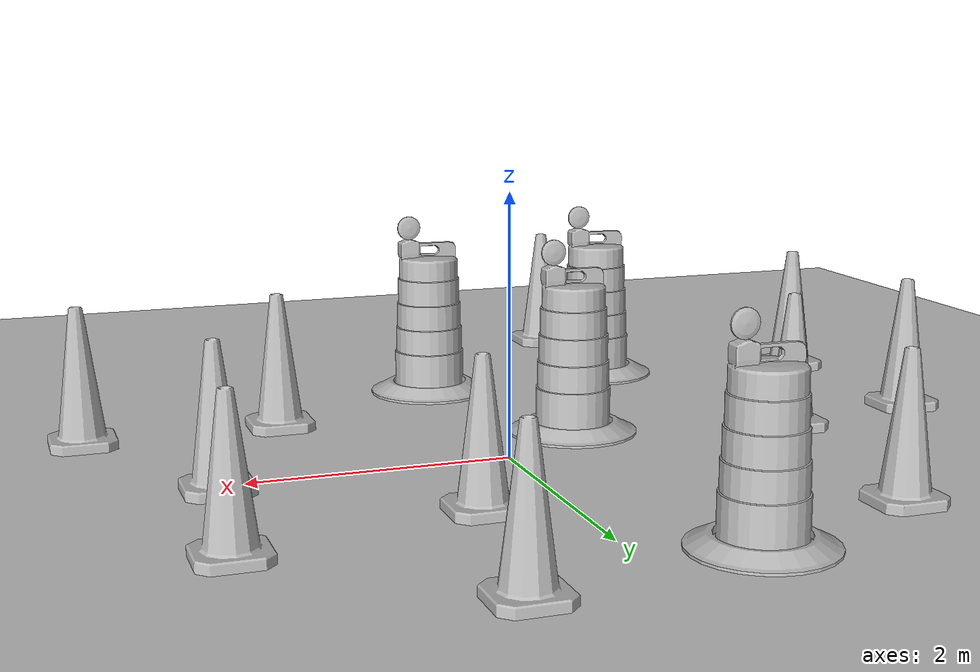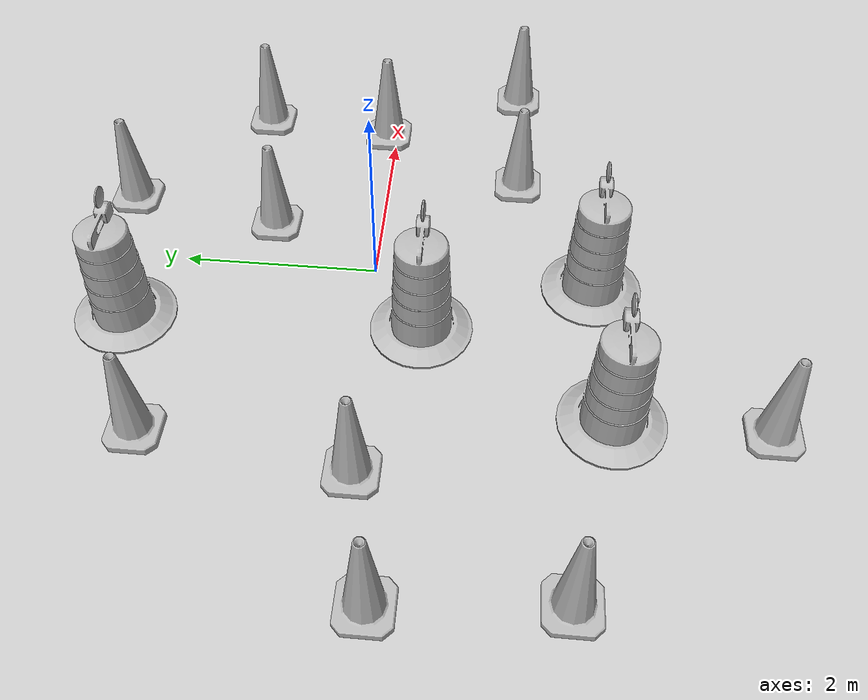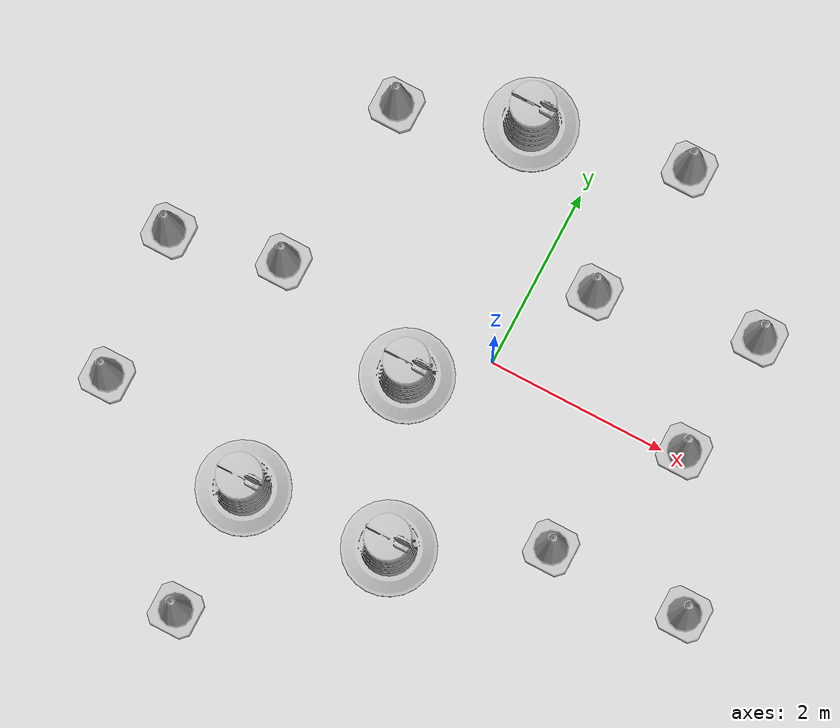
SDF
<sdf version="1.7">
 <world name="default">
  <light name="sun" type="directional">
   <pose>0 0 10 0 -0 0</pose>
   <diffuse>0.8 0.8 0.8 1</diffuse>
   <specular>0.2 0.2 0.2 1</specular>
   <attenuation>
    <range>1000</range>
    <constant>0.9</constant>
    <linear>0.01</linear>
    <quadratic>0.001</quadratic>
   </attenuation>
   <direction>-0.5 0.1 -0.9</direction>
   <spot><inner_angle>0</inner_angle><outer_angle>0</outer_angle><falloff>0</falloff></spot>
  </light>
  <model name="ground_plane">
   <static>1</static>
   <link name="link">
    <collision name="collision">
     <geometry><plane><normal>0 0 1</normal><size>100 100</size></plane></geometry>
     <surface>
      <contact><collide_bitmask>65535</collide_bitmask></contact>
      <friction><ode><mu>100</mu><mu2>50</mu2></ode></friction>
     </surface>
    </collision>
    <visual name="visual">
     <cast_shadows>0</cast_shadows>
     <geometry><plane><normal>0 0 1</normal><size>100 100</size></plane></geometry>
     <material>
      <script><uri>file://media/materials/scripts/gazebo.material</uri><name>Gazebo/Grey</name></script>
     </material>
    </visual>
   </link>
  </model>
  <gravity>0 0 -9.8</gravity>
  <magnetic_field>6e-06 2.3e-05 -4.2e-05</magnetic_field>
  <atmosphere type="adiabatic"/>
  <physics type="ode">
   <max_step_size>0.001</max_step_size>
   <real_time_factor>1</real_time_factor>
   <real_time_update_rate>1000</real_time_update_rate>
  </physics>
  <scene><ambient>0.4 0.4 0.4 1</ambient><background>0.7 0.7 0.7 1</background><shadows>1</shadows></scene>
  <audio><device>default</device></audio>
  <spherical_coordinates>
   <surface_model>EARTH_WGS84</surface_model>
   <latitude_deg>0</latitude_deg>
   <longitude_deg>0</longitude_deg>
   <elevation>0</elevation>
   <heading_deg>0</heading_deg>
  </spherical_coordinates>
  <model name="Construction Cone">
   <link name="link">
    <collision name="collision">
     <geometry>
      <mesh><scale>10 10 10</scale><uri>model://construction_cone/meshes/construction_cone.dae</uri></mesh>
     </geometry>
    </collision>
    <visual name="visual">
     <geometry>
      <mesh><scale>10 10 10</scale><uri>model://construction_cone/meshes/construction_cone.dae</uri></mesh>
     </geometry>
    </visual>
    <inertial>
     <inertia><ixx>1</ixx><ixy>0</ixy><ixz>0</ixz><iyy>1</iyy><iyz>0</iyz><izz>1</izz></inertia>
     <mass>1</mass>
    </inertial>
   </link>
   <pose>2.99155 -1.41624 -0 0 -0 0</pose>
  </model>
  <model name="Construction Cone_0">
   <link name="link">
    <collision name="collision">
     <geometry>
      <mesh><scale>10 10 10</scale><uri>model://construction_cone/meshes/construction_cone.dae</uri></mesh>
     </geometry>
    </collision>
    <visual name="visual">
     <geometry>
      <mesh><scale>10 10 10</scale><uri>model://construction_cone/meshes/construction_cone.dae</uri></mesh>
     </geometry>
    </visual>
    <inertial>
     <inertia><ixx>1</ixx><ixy>0</ixy><ixz>0</ixz><iyy>1</iyy><iyz>0</iyz><izz>1</izz></inertia>
     <mass>1</mass>
    </inertial>
   </link>
   <pose>2.20627 0.100953 -0 0 -0 0</pose>
  </model>
  <model name="Construction Cone_0_clone">
   <link name="link">
    <collision name="collision">
     <geometry>
      <mesh><scale>10 10 10</scale><uri>model://construction_cone/meshes/construction_cone.dae</uri></mesh>
     </geometry>
    </collision>
    <visual name="visual">
     <geometry>
      <mesh><scale>10 10 10</scale><uri>model://construction_cone/meshes/construction_cone.dae</uri></mesh>
     </geometry>
    </visual>
    <inertial>
     <inertia><ixx>1</ixx><ixy>0</ixy><ixz>0</ixz><iyy>1</iyy><iyz>0</iyz><izz>1</izz></inertia>
     <mass>1</mass>
    </inertial>
   </link>
   <pose>1.44582 -1.44647 -1e-05 0 -0 0</pose>
  </model>
  <model name="Construction Cone_0_clone_0">
   <link name="link">
    <collision name="collision">
     <geometry>
      <mesh><scale>10 10 10</scale><uri>model://construction_cone/meshes/construction_cone.dae</uri></mesh>
     </geometry>
    </collision>
    <visual name="visual">
     <geometry>
      <mesh><scale>10 10 10</scale><uri>model://construction_cone/meshes/construction_cone.dae</uri></mesh>
     </geometry>
    </visual>
    <inertial>
     <inertia><ixx>1</ixx><ixy>0</ixy><ixz>0</ixz><iyy>1</iyy><iyz>0</iyz><izz>1</izz></inertia>
     <mass>1</mass>
    </inertial>
   </link>
   <pose>0.603743 1.15522 0 -0 -0 -0</pose>
  </model>
  <model name="Construction Cone_0_clone_1">
   <link name="link">
    <collision name="collision">
     <geometry>
      <mesh><scale>10 10 10</scale><uri>model://construction_cone/meshes/construction_cone.dae</uri></mesh>
     </geometry>
    </collision>
    <visual name="visual">
     <geometry>
      <mesh><scale>10 10 10</scale><uri>model://construction_cone/meshes/construction_cone.dae</uri></mesh>
     </geometry>
    </visual>
    <inertial>
     <inertia><ixx>1</ixx><ixy>0</ixy><ixz>0</ixz><iyy>1</iyy><iyz>0</iyz><izz>1</izz></inertia>
     <mass>1</mass>
    </inertial>
   </link>
   <pose>2.36178 1.52509 -0 0 -0 0</pose>
  </model>
  <model name="Construction Cone_0_clone_2">
   <link name="link">
    <collision name="collision">
     <geometry>
      <mesh><scale>10 10 10</scale><uri>model://construction_cone/meshes/construction_cone.dae</uri></mesh>
     </geometry>
    </collision>
    <visual name="visual">
     <geometry>
      <mesh><scale>10 10 10</scale><uri>model://construction_cone/meshes/construction_cone.dae</uri></mesh>
     </geometry>
    </visual>
    <inertial>
     <inertia><ixx>1</ixx><ixy>0</ixy><ixz>0</ixz><iyy>1</iyy><iyz>0</iyz><izz>1</izz></inertia>
     <mass>1</mass>
    </inertial>
   </link>
   <pose>0.886085 2.78255 -0 0 -0 0</pose>
  </model>
  <model name="Construction Cone_0_clone_3">
   <link name="link">
    <collision name="collision">
     <geometry>
      <mesh><scale>10 10 10</scale><uri>model://construction_cone/meshes/construction_cone.dae</uri></mesh>
     </geometry>
    </collision>
    <visual name="visual">
     <geometry>
      <mesh><scale>10 10 10</scale><uri>model://construction_cone/meshes/construction_cone.dae</uri></mesh>
     </geometry>
    </visual>
    <inertial>
     <inertia><ixx>1</ixx><ixy>0</ixy><ixz>0</ixz><iyy>1</iyy><iyz>0</iyz><izz>1</izz></inertia>
     <mass>1</mass>
    </inertial>
   </link>
   <pose>-2.16408 1.95542 -0 0 -0 0</pose>
  </model>
  <model name="Construction Cone_0_clone_4">
   <link name="link">
    <collision name="collision">
     <geometry>
      <mesh><scale>10 10 10</scale><uri>model://construction_cone/meshes/construction_cone.dae</uri></mesh>
     </geometry>
    </collision>
    <visual name="visual">
     <geometry>
      <mesh><scale>10 10 10</scale><uri>model://construction_cone/meshes/construction_cone.dae</uri></mesh>
     </geometry>
    </visual>
    <inertial>
     <inertia><ixx>1</ixx><ixy>0</ixy><ixz>0</ixz><iyy>1</iyy><iyz>0</iyz><izz>1</izz></inertia>
     <mass>1</mass>
    </inertial>
   </link>
   <pose>-2.43363 -0.078385 -0 0 -1e-06 0</pose>
  </model>
  <model name="Construction Cone_0_clone_5">
   <link name="link">
    <collision name="collision">
     <geometry>
      <mesh><scale>10 10 10</scale><uri>model://construction_cone/meshes/construction_cone.dae</uri></mesh>
     </geometry>
    </collision>
    <visual name="visual">
     <geometry>
      <mesh><scale>10 10 10</scale><uri>model://construction_cone/meshes/construction_cone.dae</uri></mesh>
     </geometry>
    </visual>
    <inertial>
     <inertia><ixx>1</ixx><ixy>0</ixy><ixz>0</ixz><iyy>1</iyy><iyz>0</iyz><izz>1</izz></inertia>
     <mass>1</mass>
    </inertial>
   </link>
   <pose>-3.50809 -2 -1e-05 -1e-06 0 0</pose>
  </model>
  <model name="Construction Cone_0_clone_6">
   <link name="link">
    <collision name="collision">
     <geometry>
      <mesh><scale>10 10 10</scale><uri>model://construction_cone/meshes/construction_cone.dae</uri></mesh>
     </geometry>
    </collision>
    <visual name="visual">
     <geometry>
      <mesh><scale>10 10 10</scale><uri>model://construction_cone/meshes/construction_cone.dae</uri></mesh>
     </geometry>
    </visual>
    <inertial>
     <inertia><ixx>1</ixx><ixy>0</ixy><ixz>0</ixz><iyy>1</iyy><iyz>0</iyz><izz>1</izz></inertia>
     <mass>1</mass>
    </inertial>
   </link>
   <pose>-3.65713 -0.349085 -1e-05 0 -0 0</pose>
  </model>
  <model name="Construction Cone_0_clone_7">
   <link name="link">
    <collision name="collision">
     <geometry>
      <mesh><scale>10 10 10</scale><uri>model://construction_cone/meshes/construction_cone.dae</uri></mesh>
     </geometry>
    </collision>
    <visual name="visual">
     <geometry>
      <mesh><scale>10 10 10</scale><uri>model://construction_cone/meshes/construction_cone.dae</uri></mesh>
     </geometry>
    </visual>
    <inertial>
     <inertia><ixx>1</ixx><ixy>0</ixy><ixz>0</ixz><iyy>1</iyy><iyz>0</iyz><izz>1</izz></inertia>
     <mass>1</mass>
    </inertial>
   </link>
   <pose>-1.70692 -3.83798 -0 0 -0 0</pose>
  </model>
  <model name="Construction Barrel">
   <link name="link">
    <inertial>
     <pose>0 0 0.4 0 -0 0</pose>
     <mass>500</mass>
     <inertia><ixx>51.2096</ixx><iyy>51.2096</iyy><izz>25</izz><ixy>0</ixy><ixz>0</ixz><iyz>0</iyz></inertia>
    </inertial>
    <collision name="collision">
     <geometry><mesh><uri>model://construction_barrel/meshes/construction_barrel.dae</uri></mesh></geometry>
    </collision>
    <visual name="visual">
     <geometry><mesh><uri>model://construction_barrel/meshes/construction_barrel.dae</uri></mesh></geometry>
    </visual>
   </link>
   <pose>-1.68775 -2.38164 -2e-06 4e-06 7e-06 -4e-06</pose>
  </model>
  <model name="Construction Barrel_clone">
   <link name="link">
    <inertial>
     <pose>0 0 0.4 0 -0 0</pose>
     <mass>500</mass>
     <inertia><ixx>51.2096</ixx><iyy>51.2096</iyy><izz>25</izz><ixy>0</ixy><ixz>0</ixz><iyz>0</iyz></inertia>
    </inertial>
    <collision name="collision">
     <geometry><mesh><uri>model://construction_barrel/meshes/construction_barrel.dae</uri></mesh></geometry>
    </collision>
    <visual name="visual">
     <geometry><mesh><uri>model://construction_barrel/meshes/construction_barrel.dae</uri></mesh></geometry>
    </visual>
   </link>
   <pose>-0.048815 -2.23236 1e-06 4e-06 3e-06 -6e-06</pose>
  </model>
  <model name="Construction Barrel_clone_0">
   <link name="link">
    <inertial>
     <pose>0 0 0.4 0 -0 0</pose>
     <mass>500</mass>
     <inertia><ixx>51.2096</ixx><iyy>51.2096</iyy><izz>25</izz><ixy>0</ixy><ixz>0</ixz><iyz>0</iyz></inertia>
    </inertial>
    <collision name="collision">
     <geometry><mesh><uri>model://construction_barrel/meshes/construction_barrel.dae</uri></mesh></geometry>
    </collision>
    <visual name="visual">
     <geometry><mesh><uri>model://construction_barrel/meshes/construction_barrel.dae</uri></mesh></geometry>
    </visual>
   </link>
   <pose>-0.812681 2.43443 1e-06 4e-06 3e-06 -6e-06</pose>
  </model>
  <model name="Construction Barrel_clone_1">
   <link name="link">
    <inertial>
     <pose>0 0 0.4 0 -0 0</pose>
     <mass>500</mass>
     <inertia><ixx>51.2096</ixx><iyy>51.2096</iyy><izz>25</izz><ixy>0</ixy><ixz>0</ixz><iyz>0</iyz></inertia>
    </inertial>
    <collision name="collision">
     <geometry><mesh><uri>model://construction_barrel/meshes/construction_barrel.dae</uri></mesh></geometry>
    </collision>
    <visual name="visual">
     <geometry><mesh><uri>model://construction_barrel/meshes/construction_barrel.dae</uri></mesh></geometry>
    </visual>
   </link>
   <pose>-0.727358 -0.540859 1e-06 4e-06 3e-06 -6e-06</pose>
  </model>
 </world>
</sdf>
